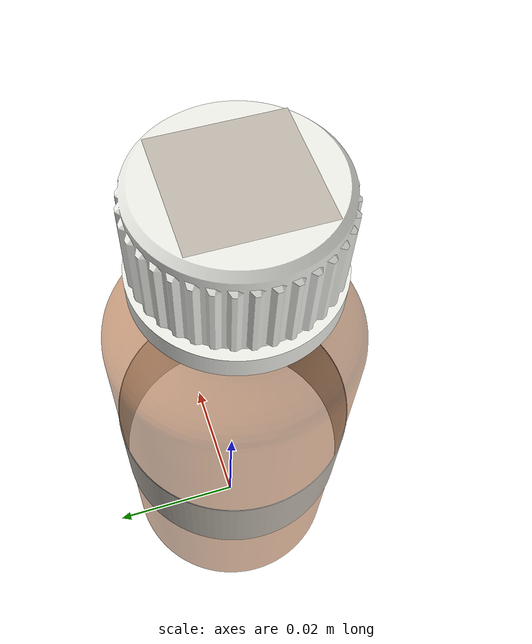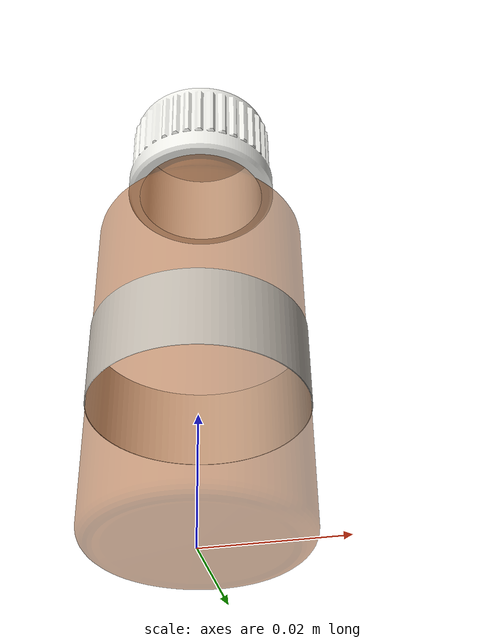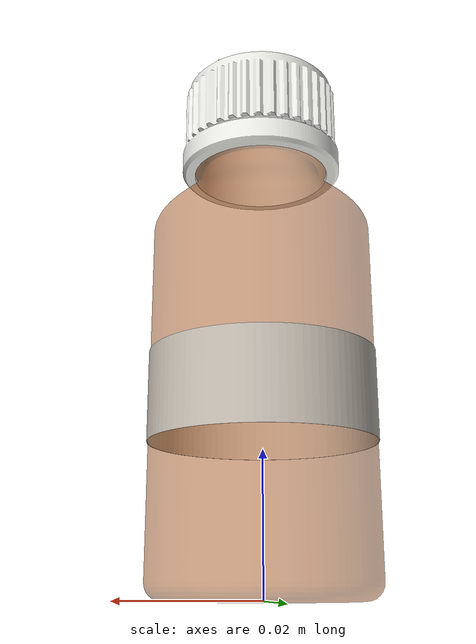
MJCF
<!-- Generated by tools/build_labelled_bottles.py. Citronellyl acetate (liquid),
     30 ml, marker 162, barcode 2009484336924.
     Origin bottom-centre, +Z up, the label's front facing -Y. -->
<mujoco model="SMP-0163">
  <asset>
    <mesh name="flask_30ml_glass" file="meshes/flask_30ml_glass.obj" inertia="exact"/>
    <mesh name="flask_30ml_cap" file="meshes/flask_30ml_cap.obj" inertia="exact"/>
    <mesh name="flask_30ml_label" file="meshes/flask_30ml_label.obj" inertia="shell"/>
    <mesh name="flask_30ml_label_back" file="meshes/flask_30ml_label_back.obj" inertia="shell"/>
    <mesh name="flask_30ml_cap_label" file="meshes/flask_30ml_cap_label.obj" inertia="shell"/>
    <texture name="label" type="2d" file="textures/SMP-0163.png"/>
    <material name="label" texture="label" specular="0.05" shininess="0.1"/>
    <texture name="cap_label" type="2d" file="textures/SMP-0163_cap.png"/>
    <material name="cap_label" texture="cap_label" specular="0.05" shininess="0.1"/>
  </asset>
  <worldbody>
    <body name="SMP-0163">
      <geom name="glass" type="mesh" mesh="flask_30ml_glass" rgba="0.620 0.280 0.050 0.500" density="2500"/>
      <geom name="cap" type="mesh" mesh="flask_30ml_cap" rgba="0.930 0.930 0.910 1.000" density="900"/>
      <geom name="label" type="mesh" mesh="flask_30ml_label" material="label" contype="0" conaffinity="0" mass="0"/>
      <geom name="label_back" type="mesh" mesh="flask_30ml_label_back" rgba="0.950 0.950 0.930 1" contype="0" conaffinity="0" mass="0"/>
      <geom name="cap_label" type="mesh" mesh="flask_30ml_cap_label" material="cap_label" contype="0" conaffinity="0" mass="0"/>
    </body>
  </worldbody>
</mujoco>
